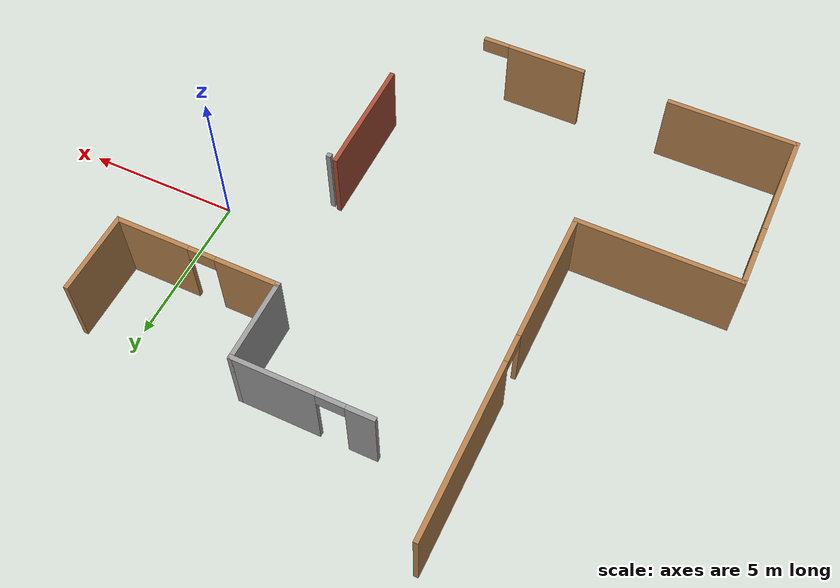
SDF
<sdf version="1.7">
 <model name="floorplan">
  <link name="Wall_1">
   <pose>-2.93248 -1.67538 0 0 -0 0</pose>
   <visual name="Wall_1_Visual">
    <pose>0 0 1.25 0 -0 0</pose>
    <geometry><box><size>0.16 0.15 2.5</size></box></geometry>
    <material>
     <script><uri>file://media/materials/scripts/gazebo.material</uri><name>Gazebo/Grey</name></script>
     <ambient>0 0 0 1</ambient>
     <shader type="pixel"/>
    </material>
    <meta><layer>0</layer></meta>
   </visual>
   <collision name="Wall_1_Collision">
    <pose>0 0 1.25 0 -0 0</pose>
    <geometry><box><size>0.16 0.15 2.5</size></box></geometry>
    <surface>
     <friction>
      <ode><mu>1</mu><mu2>1</mu2><fdir1>0 0 0</fdir1><slip1>0</slip1><slip2>0</slip2></ode>
      <torsional>
       <coefficient>1</coefficient>
       <patch_radius>0</patch_radius>
       <surface_radius>0</surface_radius>
       <use_patch_radius>1</use_patch_radius>
       <ode><slip>0</slip></ode>
      </torsional>
     </friction>
     <bounce><restitution_coefficient>0</restitution_coefficient><threshold>1e+06</threshold></bounce>
     <contact>
      <collide_without_contact>0</collide_without_contact>
      <collide_without_contact_bitmask>1</collide_without_contact_bitmask>
      <collide_bitmask>1</collide_bitmask>
      <ode>
       <soft_cfm>0</soft_cfm>
       <soft_erp>0.2</soft_erp>
       <kp>1e+13</kp>
       <kd>1</kd>
       <max_vel>0.01</max_vel>
       <min_depth>0</min_depth>
      </ode>
      <bullet>
       <split_impulse>1</split_impulse>
       <split_impulse_penetration_threshold>-0.01</split_impulse_penetration_threshold>
       <soft_cfm>0</soft_cfm>
       <soft_erp>0.2</soft_erp>
       <kp>1e+13</kp>
       <kd>1</kd>
      </bullet>
     </contact>
    </surface>
   </collision>
  </link>
  <link name="Wall_22">
   <pose>-10.625 2.81893 0 0 0 -1.5708</pose>
   <visual name="Wall_22_Visual_0">
    <pose>-2.65849 0 1.25 0 -0 0</pose>
    <geometry><box><size>5.68303 0.15 2.5</size></box></geometry>
    <material>
     <script><uri>file://media/materials/scripts/gazebo.material</uri><name>Gazebo/Wood</name></script>
     <ambient>0.996078 0.47451 0.0196078 1</ambient>
     <shader type="pixel"/>
    </material>
    <meta><layer>0</layer></meta>
   </visual>
   <visual name="Wall_22_Visual_1">
    <pose>3.29151 0 1.25 0 -0 0</pose>
    <geometry><box><size>4.41697 0.15 2.5</size></box></geometry>
    <material>
     <script><uri>file://media/materials/scripts/gazebo.material</uri><name>Gazebo/Wood</name></script>
     <ambient>0.996078 0.47451 0.0196078 1</ambient>
     <shader type="pixel"/>
    </material>
    <meta><layer>0</layer></meta>
   </visual>
   <visual name="Wall_22_Visual_2">
    <pose>0.633029 0 2.25 0 -0 0</pose>
    <geometry><box><size>0.9 0.15 0.5</size></box></geometry>
    <material>
     <script><uri>file://media/materials/scripts/gazebo.material</uri><name>Gazebo/Wood</name></script>
     <ambient>0.996078 0.47451 0.0196078 1</ambient>
     <shader type="pixel"/>
    </material>
    <meta><layer>0</layer></meta>
   </visual>
   <collision name="Wall_22_Collision_0">
    <pose>-2.65849 0 1.25 0 -0 0</pose>
    <geometry><box><size>5.68303 0.15 2.5</size></box></geometry>
    <surface>
     <friction>
      <ode><mu>1</mu><mu2>1</mu2><fdir1>0 0 0</fdir1><slip1>0</slip1><slip2>0</slip2></ode>
      <torsional>
       <coefficient>1</coefficient>
       <patch_radius>0</patch_radius>
       <surface_radius>0</surface_radius>
       <use_patch_radius>1</use_patch_radius>
       <ode><slip>0</slip></ode>
      </torsional>
     </friction>
     <bounce><restitution_coefficient>0</restitution_coefficient><threshold>1e+06</threshold></bounce>
     <contact>
      <collide_without_contact>0</collide_without_contact>
      <collide_without_contact_bitmask>1</collide_without_contact_bitmask>
      <collide_bitmask>1</collide_bitmask>
      <ode>
       <soft_cfm>0</soft_cfm>
       <soft_erp>0.2</soft_erp>
       <kp>1e+13</kp>
       <kd>1</kd>
       <max_vel>0.01</max_vel>
       <min_depth>0</min_depth>
      </ode>
      <bullet>
       <split_impulse>1</split_impulse>
       <split_impulse_penetration_threshold>-0.01</split_impulse_penetration_threshold>
       <soft_cfm>0</soft_cfm>
       <soft_erp>0.2</soft_erp>
       <kp>1e+13</kp>
       <kd>1</kd>
      </bullet>
     </contact>
    </surface>
   </collision>
   <collision name="Wall_22_Collision_1">
    <pose>3.29151 0 1.25 0 -0 0</pose>
    <geometry><box><size>4.41697 0.15 2.5</size></box></geometry>
    <surface>
     <friction>
      <ode><mu>1</mu><mu2>1</mu2><fdir1>0 0 0</fdir1><slip1>0</slip1><slip2>0</slip2></ode>
      <torsional>
       <coefficient>1</coefficient>
       <patch_radius>0</patch_radius>
       <surface_radius>0</surface_radius>
       <use_patch_radius>1</use_patch_radius>
       <ode><slip>0</slip></ode>
      </torsional>
     </friction>
     <bounce><restitution_coefficient>0</restitution_coefficient><threshold>1e+06</threshold></bounce>
     <contact>
      <collide_without_contact>0</collide_without_contact>
      <collide_without_contact_bitmask>1</collide_without_contact_bitmask>
      <collide_bitmask>1</collide_bitmask>
      <ode>
       <soft_cfm>0</soft_cfm>
       <soft_erp>0.2</soft_erp>
       <kp>1e+13</kp>
       <kd>1</kd>
       <max_vel>0.01</max_vel>
       <min_depth>0</min_depth>
      </ode>
      <bullet>
       <split_impulse>1</split_impulse>
       <split_impulse_penetration_threshold>-0.01</split_impulse_penetration_threshold>
       <soft_cfm>0</soft_cfm>
       <soft_erp>0.2</soft_erp>
       <kp>1e+13</kp>
       <kd>1</kd>
      </bullet>
     </contact>
    </surface>
   </collision>
   <collision name="Wall_22_Collision_2">
    <pose>0.633029 0 2.25 0 -0 0</pose>
    <geometry><box><size>0.9 0.15 0.5</size></box></geometry>
    <surface>
     <friction>
      <ode><mu>1</mu><mu2>1</mu2><fdir1>0 0 0</fdir1><slip1>0</slip1><slip2>0</slip2></ode>
      <torsional>
       <coefficient>1</coefficient>
       <patch_radius>0</patch_radius>
       <surface_radius>0</surface_radius>
       <use_patch_radius>1</use_patch_radius>
       <ode><slip>0</slip></ode>
      </torsional>
     </friction>
     <bounce><restitution_coefficient>0</restitution_coefficient><threshold>1e+06</threshold></bounce>
     <contact>
      <collide_without_contact>0</collide_without_contact>
      <collide_without_contact_bitmask>1</collide_without_contact_bitmask>
      <collide_bitmask>1</collide_bitmask>
      <ode>
       <soft_cfm>0</soft_cfm>
       <soft_erp>0.2</soft_erp>
       <kp>1e+13</kp>
       <kd>1</kd>
       <max_vel>0.01</max_vel>
       <min_depth>0</min_depth>
      </ode>
      <bullet>
       <split_impulse>1</split_impulse>
       <split_impulse_penetration_threshold>-0.01</split_impulse_penetration_threshold>
       <soft_cfm>0</soft_cfm>
       <soft_erp>0.2</soft_erp>
       <kp>1e+13</kp>
       <kd>1</kd>
      </bullet>
     </contact>
    </surface>
   </collision>
  </link>
  <link name="Wall_23">
   <pose>-13.175 -2.60607 0 0 -0 3.14159</pose>
   <visual name="Wall_23_Visual">
    <pose>0 0 1.25 0 -0 0</pose>
    <geometry><box><size>5.25 0.15 2.5</size></box></geometry>
    <material>
     <script><uri>file://media/materials/scripts/gazebo.material</uri><name>Gazebo/Wood</name></script>
     <ambient>0.996078 0.47451 0.0196078 1</ambient>
     <shader type="pixel"/>
    </material>
    <meta><layer>0</layer></meta>
   </visual>
   <collision name="Wall_23_Collision">
    <pose>0 0 1.25 0 -0 0</pose>
    <geometry><box><size>5.25 0.15 2.5</size></box></geometry>
    <surface>
     <friction>
      <ode><mu>1</mu><mu2>1</mu2><fdir1>0 0 0</fdir1><slip1>0</slip1><slip2>0</slip2></ode>
      <torsional>
       <coefficient>1</coefficient>
       <patch_radius>0</patch_radius>
       <surface_radius>0</surface_radius>
       <use_patch_radius>1</use_patch_radius>
       <ode><slip>0</slip></ode>
      </torsional>
     </friction>
     <bounce><restitution_coefficient>0</restitution_coefficient><threshold>1e+06</threshold></bounce>
     <contact>
      <collide_without_contact>0</collide_without_contact>
      <collide_without_contact_bitmask>1</collide_without_contact_bitmask>
      <collide_bitmask>1</collide_bitmask>
      <ode>
       <soft_cfm>0</soft_cfm>
       <soft_erp>0.2</soft_erp>
       <kp>1e+13</kp>
       <kd>1</kd>
       <max_vel>0.01</max_vel>
       <min_depth>0</min_depth>
      </ode>
      <bullet>
       <split_impulse>1</split_impulse>
       <split_impulse_penetration_threshold>-0.01</split_impulse_penetration_threshold>
       <soft_cfm>0</soft_cfm>
       <soft_erp>0.2</soft_erp>
       <kp>1e+13</kp>
       <kd>1</kd>
      </bullet>
     </contact>
    </surface>
   </collision>
  </link>
  <link name="Wall_24">
   <pose>-15.725 -5.40607 0 0 0 -1.5708</pose>
   <visual name="Wall_24_Visual_1">
    <pose>1.07666 0 1.25 0 -0 0</pose>
    <geometry><box><size>3.59667 0.15 2.5</size></box></geometry>
    <material>
     <script><uri>file://media/materials/scripts/gazebo.material</uri><name>Gazebo/Wood</name></script>
     <ambient>0.996078 0.47451 0.0196078 1</ambient>
     <shader type="pixel"/>
    </material>
    <meta><layer>0</layer></meta>
   </visual>
   <visual name="Wall_24_Visual_0">
    <pose>-2.24833 0 1.25 0 -0 0</pose>
    <geometry><box><size>1.25333 0.15 2.5</size></box></geometry>
    <material>
     <script><uri>file://media/materials/scripts/gazebo.material</uri><name>Gazebo/Wood</name></script>
     <ambient>0.996078 0.47451 0.0196078 1</ambient>
     <shader type="pixel"/>
    </material>
    <meta><layer>0</layer></meta>
   </visual>
   <visual name="Wall_24_Visual_2">
    <pose>-1.17167 0 2.25 0 -0 0</pose>
    <geometry><box><size>0.9 0.15 0.5</size></box></geometry>
    <material>
     <script><uri>file://media/materials/scripts/gazebo.material</uri><name>Gazebo/Wood</name></script>
     <ambient>0.996078 0.47451 0.0196078 1</ambient>
     <shader type="pixel"/>
    </material>
    <meta><layer>0</layer></meta>
   </visual>
   <collision name="Wall_24_Collision_0">
    <pose>-2.24833 0 1.25 0 -0 0</pose>
    <geometry><box><size>1.25333 0.15 2.5</size></box></geometry>
    <surface>
     <friction>
      <ode><mu>1</mu><mu2>1</mu2><fdir1>0 0 0</fdir1><slip1>0</slip1><slip2>0</slip2></ode>
      <torsional>
       <coefficient>1</coefficient>
       <patch_radius>0</patch_radius>
       <surface_radius>0</surface_radius>
       <use_patch_radius>1</use_patch_radius>
       <ode><slip>0</slip></ode>
      </torsional>
     </friction>
     <bounce><restitution_coefficient>0</restitution_coefficient><threshold>1e+06</threshold></bounce>
     <contact>
      <collide_without_contact>0</collide_without_contact>
      <collide_without_contact_bitmask>1</collide_without_contact_bitmask>
      <collide_bitmask>1</collide_bitmask>
      <ode>
       <soft_cfm>0</soft_cfm>
       <soft_erp>0.2</soft_erp>
       <kp>1e+13</kp>
       <kd>1</kd>
       <max_vel>0.01</max_vel>
       <min_depth>0</min_depth>
      </ode>
      <bullet>
       <split_impulse>1</split_impulse>
       <split_impulse_penetration_threshold>-0.01</split_impulse_penetration_threshold>
       <soft_cfm>0</soft_cfm>
       <soft_erp>0.2</soft_erp>
       <kp>1e+13</kp>
       <kd>1</kd>
      </bullet>
     </contact>
    </surface>
   </collision>
   <collision name="Wall_24_Collision_1">
    <pose>1.07666 0 1.25 0 -0 0</pose>
    <geometry><box><size>3.59667 0.15 2.5</size></box></geometry>
    <surface>
     <friction>
      <ode><mu>1</mu><mu2>1</mu2><fdir1>0 0 0</fdir1><slip1>0</slip1><slip2>0</slip2></ode>
      <torsional>
       <coefficient>1</coefficient>
       <patch_radius>0</patch_radius>
       <surface_radius>0</surface_radius>
       <use_patch_radius>1</use_patch_radius>
       <ode><slip>0</slip></ode>
      </torsional>
     </friction>
     <bounce><restitution_coefficient>0</restitution_coefficient><threshold>1e+06</threshold></bounce>
     <contact>
      <collide_without_contact>0</collide_without_contact>
      <collide_without_contact_bitmask>1</collide_without_contact_bitmask>
      <collide_bitmask>1</collide_bitmask>
      <ode>
       <soft_cfm>0</soft_cfm>
       <soft_erp>0.2</soft_erp>
       <kp>1e+13</kp>
       <kd>1</kd>
       <max_vel>0.01</max_vel>
       <min_depth>0</min_depth>
      </ode>
      <bullet>
       <split_impulse>1</split_impulse>
       <split_impulse_penetration_threshold>-0.01</split_impulse_penetration_threshold>
       <soft_cfm>0</soft_cfm>
       <soft_erp>0.2</soft_erp>
       <kp>1e+13</kp>
       <kd>1</kd>
      </bullet>
     </contact>
    </surface>
   </collision>
   <collision name="Wall_24_Collision_2">
    <pose>-1.17167 0 2.25 0 -0 0</pose>
    <geometry><box><size>0.9 0.15 0.5</size></box></geometry>
    <surface>
     <friction>
      <ode><mu>1</mu><mu2>1</mu2><fdir1>0 0 0</fdir1><slip1>0</slip1><slip2>0</slip2></ode>
      <torsional>
       <coefficient>1</coefficient>
       <patch_radius>0</patch_radius>
       <surface_radius>0</surface_radius>
       <use_patch_radius>1</use_patch_radius>
       <ode><slip>0</slip></ode>
      </torsional>
     </friction>
     <bounce><restitution_coefficient>0</restitution_coefficient><threshold>1e+06</threshold></bounce>
     <contact>
      <collide_without_contact>0</collide_without_contact>
      <collide_without_contact_bitmask>1</collide_without_contact_bitmask>
      <collide_bitmask>1</collide_bitmask>
      <ode>
       <soft_cfm>0</soft_cfm>
       <soft_erp>0.2</soft_erp>
       <kp>1e+13</kp>
       <kd>1</kd>
       <max_vel>0.01</max_vel>
       <min_depth>0</min_depth>
      </ode>
      <bullet>
       <split_impulse>1</split_impulse>
       <split_impulse_penetration_threshold>-0.01</split_impulse_penetration_threshold>
       <soft_cfm>0</soft_cfm>
       <soft_erp>0.2</soft_erp>
       <kp>1e+13</kp>
       <kd>1</kd>
      </bullet>
     </contact>
    </surface>
   </collision>
  </link>
  <link name="Wall_26">
   <pose>-13.675 -8.20607 0 0 -0 0</pose>
   <visual name="Wall_26_Visual">
    <pose>0 0 1.25 0 -0 0</pose>
    <geometry><box><size>4.25 0.15 2.5</size></box></geometry>
    <material>
     <script><uri>file://media/materials/scripts/gazebo.material</uri><name>Gazebo/Wood</name></script>
     <ambient>0.996078 0.47451 0.0196078 1</ambient>
     <shader type="pixel"/>
    </material>
    <meta><layer>0</layer></meta>
   </visual>
   <collision name="Wall_26_Collision">
    <pose>0 0 1.25 0 -0 0</pose>
    <geometry><box><size>4.25 0.15 2.5</size></box></geometry>
    <surface>
     <friction>
      <ode><mu>1</mu><mu2>1</mu2><fdir1>0 0 0</fdir1><slip1>0</slip1><slip2>0</slip2></ode>
      <torsional>
       <coefficient>1</coefficient>
       <patch_radius>0</patch_radius>
       <surface_radius>0</surface_radius>
       <use_patch_radius>1</use_patch_radius>
       <ode><slip>0</slip></ode>
      </torsional>
     </friction>
     <bounce><restitution_coefficient>0</restitution_coefficient><threshold>1e+06</threshold></bounce>
     <contact>
      <collide_without_contact>0</collide_without_contact>
      <collide_without_contact_bitmask>1</collide_without_contact_bitmask>
      <collide_bitmask>1</collide_bitmask>
      <ode>
       <soft_cfm>0</soft_cfm>
       <soft_erp>0.2</soft_erp>
       <kp>1e+13</kp>
       <kd>1</kd>
       <max_vel>0.01</max_vel>
       <min_depth>0</min_depth>
      </ode>
      <bullet>
       <split_impulse>1</split_impulse>
       <split_impulse_penetration_threshold>-0.01</split_impulse_penetration_threshold>
       <soft_cfm>0</soft_cfm>
       <soft_erp>0.2</soft_erp>
       <kp>1e+13</kp>
       <kd>1</kd>
      </bullet>
     </contact>
    </surface>
   </collision>
  </link>
  <link name="Wall_32">
   <pose>-5.98815 5.71707 0 0 -0 0</pose>
   <visual name="Wall_32_Visual_0">
    <pose>-1.79547 0 1.25 0 -0 0</pose>
    <geometry><box><size>0.90906 0.15 2.5</size></box></geometry>
    <material>
     <script><uri>file://media/materials/scripts/gazebo.material</uri><name>Gazebo/Grey</name></script>
     <ambient>1 1 1 1</ambient>
     <shader type="pixel"/>
    </material>
    <meta><layer>0</layer></meta>
   </visual>
   <visual name="Wall_32_Visual_1">
    <pose>0.90453 0 1.25 0 -0 0</pose>
    <geometry><box><size>2.69094 0.15 2.5</size></box></geometry>
    <material>
     <script><uri>file://media/materials/scripts/gazebo.material</uri><name>Gazebo/Grey</name></script>
     <ambient>1 1 1 1</ambient>
     <shader type="pixel"/>
    </material>
    <meta><layer>0</layer></meta>
   </visual>
   <visual name="Wall_32_Visual_2">
    <pose>-0.89094 0 2.25 0 -0 0</pose>
    <geometry><box><size>0.9 0.15 0.5</size></box></geometry>
    <material>
     <script><uri>file://media/materials/scripts/gazebo.material</uri><name>Gazebo/Grey</name></script>
     <ambient>1 1 1 1</ambient>
     <shader type="pixel"/>
    </material>
    <meta><layer>0</layer></meta>
   </visual>
   <collision name="Wall_32_Collision_0">
    <pose>-1.79547 0 1.25 0 -0 0</pose>
    <geometry><box><size>0.90906 0.15 2.5</size></box></geometry>
    <surface>
     <friction>
      <ode><mu>1</mu><mu2>1</mu2><fdir1>0 0 0</fdir1><slip1>0</slip1><slip2>0</slip2></ode>
      <torsional>
       <coefficient>1</coefficient>
       <patch_radius>0</patch_radius>
       <surface_radius>0</surface_radius>
       <use_patch_radius>1</use_patch_radius>
       <ode><slip>0</slip></ode>
      </torsional>
     </friction>
     <bounce><restitution_coefficient>0</restitution_coefficient><threshold>1e+06</threshold></bounce>
     <contact>
      <collide_without_contact>0</collide_without_contact>
      <collide_without_contact_bitmask>1</collide_without_contact_bitmask>
      <collide_bitmask>1</collide_bitmask>
      <ode>
       <soft_cfm>0</soft_cfm>
       <soft_erp>0.2</soft_erp>
       <kp>1e+13</kp>
       <kd>1</kd>
       <max_vel>0.01</max_vel>
       <min_depth>0</min_depth>
      </ode>
      <bullet>
       <split_impulse>1</split_impulse>
       <split_impulse_penetration_threshold>-0.01</split_impulse_penetration_threshold>
       <soft_cfm>0</soft_cfm>
       <soft_erp>0.2</soft_erp>
       <kp>1e+13</kp>
       <kd>1</kd>
      </bullet>
     </contact>
    </surface>
   </collision>
   <collision name="Wall_32_Collision_1">
    <pose>0.90453 0 1.25 0 -0 0</pose>
    <geometry><box><size>2.69094 0.15 2.5</size></box></geometry>
    <surface>
     <friction>
      <ode><mu>1</mu><mu2>1</mu2><fdir1>0 0 0</fdir1><slip1>0</slip1><slip2>0</slip2></ode>
      <torsional>
       <coefficient>1</coefficient>
       <patch_radius>0</patch_radius>
       <surface_radius>0</surface_radius>
       <use_patch_radius>1</use_patch_radius>
       <ode><slip>0</slip></ode>
      </torsional>
     </friction>
     <bounce><restitution_coefficient>0</restitution_coefficient><threshold>1e+06</threshold></bounce>
     <contact>
      <collide_without_contact>0</collide_without_contact>
      <collide_without_contact_bitmask>1</collide_without_contact_bitmask>
      <collide_bitmask>1</collide_bitmask>
      <ode>
       <soft_cfm>0</soft_cfm>
       <soft_erp>0.2</soft_erp>
       <kp>1e+13</kp>
       <kd>1</kd>
       <max_vel>0.01</max_vel>
       <min_depth>0</min_depth>
      </ode>
      <bullet>
       <split_impulse>1</split_impulse>
       <split_impulse_penetration_threshold>-0.01</split_impulse_penetration_threshold>
       <soft_cfm>0</soft_cfm>
       <soft_erp>0.2</soft_erp>
       <kp>1e+13</kp>
       <kd>1</kd>
      </bullet>
     </contact>
    </surface>
   </collision>
   <collision name="Wall_32_Collision_2">
    <pose>-0.89094 0 2.25 0 -0 0</pose>
    <geometry><box><size>0.9 0.15 0.5</size></box></geometry>
    <surface>
     <friction>
      <ode><mu>1</mu><mu2>1</mu2><fdir1>0 0 0</fdir1><slip1>0</slip1><slip2>0</slip2></ode>
      <torsional>
       <coefficient>1</coefficient>
       <patch_radius>0</patch_radius>
       <surface_radius>0</surface_radius>
       <use_patch_radius>1</use_patch_radius>
       <ode><slip>0</slip></ode>
      </torsional>
     </friction>
     <bounce><restitution_coefficient>0</restitution_coefficient><threshold>1e+06</threshold></bounce>
     <contact>
      <collide_without_contact>0</collide_without_contact>
      <collide_without_contact_bitmask>1</collide_without_contact_bitmask>
      <collide_bitmask>1</collide_bitmask>
      <ode>
       <soft_cfm>0</soft_cfm>
       <soft_erp>0.2</soft_erp>
       <kp>1e+13</kp>
       <kd>1</kd>
       <max_vel>0.01</max_vel>
       <min_depth>0</min_depth>
      </ode>
      <bullet>
       <split_impulse>1</split_impulse>
       <split_impulse_penetration_threshold>-0.01</split_impulse_penetration_threshold>
       <soft_cfm>0</soft_cfm>
       <soft_erp>0.2</soft_erp>
       <kp>1e+13</kp>
       <kd>1</kd>
      </bullet>
     </contact>
    </surface>
   </collision>
  </link>
  <link name="Wall_33">
   <pose>-3.81315 4.41707 0 0 0 -1.5708</pose>
   <visual name="Wall_33_Visual">
    <pose>0 0 1.25 0 -0 0</pose>
    <geometry><box><size>2.75 0.15 2.5</size></box></geometry>
    <material>
     <script><uri>file://media/materials/scripts/gazebo.material</uri><name>Gazebo/Grey</name></script>
     <ambient>1 1 1 1</ambient>
     <shader type="pixel"/>
    </material>
    <meta><layer>0</layer></meta>
   </visual>
   <collision name="Wall_33_Collision">
    <pose>0 0 1.25 0 -0 0</pose>
    <geometry><box><size>2.75 0.15 2.5</size></box></geometry>
    <surface>
     <friction>
      <ode><mu>1</mu><mu2>1</mu2><fdir1>0 0 0</fdir1><slip1>0</slip1><slip2>0</slip2></ode>
      <torsional>
       <coefficient>1</coefficient>
       <patch_radius>0</patch_radius>
       <surface_radius>0</surface_radius>
       <use_patch_radius>1</use_patch_radius>
       <ode><slip>0</slip></ode>
      </torsional>
     </friction>
     <bounce><restitution_coefficient>0</restitution_coefficient><threshold>1e+06</threshold></bounce>
     <contact>
      <collide_without_contact>0</collide_without_contact>
      <collide_without_contact_bitmask>1</collide_without_contact_bitmask>
      <collide_bitmask>1</collide_bitmask>
      <ode>
       <soft_cfm>0</soft_cfm>
       <soft_erp>0.2</soft_erp>
       <kp>1e+13</kp>
       <kd>1</kd>
       <max_vel>0.01</max_vel>
       <min_depth>0</min_depth>
      </ode>
      <bullet>
       <split_impulse>1</split_impulse>
       <split_impulse_penetration_threshold>-0.01</split_impulse_penetration_threshold>
       <soft_cfm>0</soft_cfm>
       <soft_erp>0.2</soft_erp>
       <kp>1e+13</kp>
       <kd>1</kd>
      </bullet>
     </contact>
    </surface>
   </collision>
  </link>
  <link name="Wall_34">
   <pose>-1.13815 3.11707 0 0 -0 0</pose>
   <visual name="Wall_34_Visual_0">
    <pose>-1.68834 0 1.25 0 -0 0</pose>
    <geometry><box><size>2.12332 0.15 2.5</size></box></geometry>
    <material>
     <script><uri>file://media/materials/scripts/gazebo.material</uri><name>Gazebo/Wood</name></script>
     <ambient>1 1 1 1</ambient>
     <shader type="pixel"/>
    </material>
    <meta><layer>0</layer></meta>
   </visual>
   <visual name="Wall_34_Visual_1">
    <pose>1.51166 0 1.25 0 -0 0</pose>
    <geometry><box><size>2.47668 0.15 2.5</size></box></geometry>
    <material>
     <script><uri>file://media/materials/scripts/gazebo.material</uri><name>Gazebo/Wood</name></script>
     <ambient>1 1 1 1</ambient>
     <shader type="pixel"/>
    </material>
    <meta><layer>0</layer></meta>
   </visual>
   <visual name="Wall_34_Visual_2">
    <pose>-0.17668 0 2.25 0 -0 0</pose>
    <geometry><box><size>0.9 0.15 0.5</size></box></geometry>
    <material>
     <script><uri>file://media/materials/scripts/gazebo.material</uri><name>Gazebo/Wood</name></script>
     <ambient>1 1 1 1</ambient>
     <shader type="pixel"/>
    </material>
    <meta><layer>0</layer></meta>
   </visual>
   <collision name="Wall_34_Collision_0">
    <pose>-1.68834 0 1.25 0 -0 0</pose>
    <geometry><box><size>2.12332 0.15 2.5</size></box></geometry>
    <surface>
     <friction>
      <ode><mu>1</mu><mu2>1</mu2><fdir1>0 0 0</fdir1><slip1>0</slip1><slip2>0</slip2></ode>
      <torsional>
       <coefficient>1</coefficient>
       <patch_radius>0</patch_radius>
       <surface_radius>0</surface_radius>
       <use_patch_radius>1</use_patch_radius>
       <ode><slip>0</slip></ode>
      </torsional>
     </friction>
     <bounce><restitution_coefficient>0</restitution_coefficient><threshold>1e+06</threshold></bounce>
     <contact>
      <collide_without_contact>0</collide_without_contact>
      <collide_without_contact_bitmask>1</collide_without_contact_bitmask>
      <collide_bitmask>1</collide_bitmask>
      <ode>
       <soft_cfm>0</soft_cfm>
       <soft_erp>0.2</soft_erp>
       <kp>1e+13</kp>
       <kd>1</kd>
       <max_vel>0.01</max_vel>
       <min_depth>0</min_depth>
      </ode>
      <bullet>
       <split_impulse>1</split_impulse>
       <split_impulse_penetration_threshold>-0.01</split_impulse_penetration_threshold>
       <soft_cfm>0</soft_cfm>
       <soft_erp>0.2</soft_erp>
       <kp>1e+13</kp>
       <kd>1</kd>
      </bullet>
     </contact>
    </surface>
   </collision>
   <collision name="Wall_34_Collision_1">
    <pose>1.51166 0 1.25 0 -0 0</pose>
    <geometry><box><size>2.47668 0.15 2.5</size></box></geometry>
    <surface>
     <friction>
      <ode><mu>1</mu><mu2>1</mu2><fdir1>0 0 0</fdir1><slip1>0</slip1><slip2>0</slip2></ode>
      <torsional>
       <coefficient>1</coefficient>
       <patch_radius>0</patch_radius>
       <surface_radius>0</surface_radius>
       <use_patch_radius>1</use_patch_radius>
       <ode><slip>0</slip></ode>
      </torsional>
     </friction>
     <bounce><restitution_coefficient>0</restitution_coefficient><threshold>1e+06</threshold></bounce>
     <contact>
      <collide_without_contact>0</collide_without_contact>
      <collide_without_contact_bitmask>1</collide_without_contact_bitmask>
      <collide_bitmask>1</collide_bitmask>
      <ode>
       <soft_cfm>0</soft_cfm>
       <soft_erp>0.2</soft_erp>
       <kp>1e+13</kp>
       <kd>1</kd>
       <max_vel>0.01</max_vel>
       <min_depth>0</min_depth>
      </ode>
      <bullet>
       <split_impulse>1</split_impulse>
       <split_impulse_penetration_threshold>-0.01</split_impulse_penetration_threshold>
       <soft_cfm>0</soft_cfm>
       <soft_erp>0.2</soft_erp>
       <kp>1e+13</kp>
       <kd>1</kd>
      </bullet>
     </contact>
    </surface>
   </collision>
   <collision name="Wall_34_Collision_2">
    <pose>-0.17668 0 2.25 0 -0 0</pose>
    <geometry><box><size>0.9 0.15 0.5</size></box></geometry>
    <surface>
     <friction>
      <ode><mu>1</mu><mu2>1</mu2><fdir1>0 0 0</fdir1><slip1>0</slip1><slip2>0</slip2></ode>
      <torsional>
       <coefficient>1</coefficient>
       <patch_radius>0</patch_radius>
       <surface_radius>0</surface_radius>
       <use_patch_radius>1</use_patch_radius>
       <ode><slip>0</slip></ode>
      </torsional>
     </friction>
     <bounce><restitution_coefficient>0</restitution_coefficient><threshold>1e+06</threshold></bounce>
     <contact>
      <collide_without_contact>0</collide_without_contact>
      <collide_without_contact_bitmask>1</collide_without_contact_bitmask>
      <collide_bitmask>1</collide_bitmask>
      <ode>
       <soft_cfm>0</soft_cfm>
       <soft_erp>0.2</soft_erp>
       <kp>1e+13</kp>
       <kd>1</kd>
       <max_vel>0.01</max_vel>
       <min_depth>0</min_depth>
      </ode>
      <bullet>
       <split_impulse>1</split_impulse>
       <split_impulse_penetration_threshold>-0.01</split_impulse_penetration_threshold>
       <soft_cfm>0</soft_cfm>
       <soft_erp>0.2</soft_erp>
       <kp>1e+13</kp>
       <kd>1</kd>
      </bullet>
     </contact>
    </surface>
   </collision>
  </link>
  <link name="Wall_35">
   <pose>1.53685 4.41707 0 0 -0 1.5708</pose>
   <visual name="Wall_35_Visual">
    <pose>0 0 1.25 0 -0 0</pose>
    <geometry><box><size>2.75 0.15 2.5</size></box></geometry>
    <material>
     <script><uri>file://media/materials/scripts/gazebo.material</uri><name>Gazebo/Wood</name></script>
     <ambient>1 1 1 1</ambient>
     <shader type="pixel"/>
    </material>
    <meta><layer>0</layer></meta>
   </visual>
   <collision name="Wall_35_Collision">
    <pose>0 0 1.25 0 -0 0</pose>
    <geometry><box><size>2.75 0.15 2.5</size></box></geometry>
    <surface>
     <friction>
      <ode><mu>1</mu><mu2>1</mu2><fdir1>0 0 0</fdir1><slip1>0</slip1><slip2>0</slip2></ode>
      <torsional>
       <coefficient>1</coefficient>
       <patch_radius>0</patch_radius>
       <surface_radius>0</surface_radius>
       <use_patch_radius>1</use_patch_radius>
       <ode><slip>0</slip></ode>
      </torsional>
     </friction>
     <bounce><restitution_coefficient>0</restitution_coefficient><threshold>1e+06</threshold></bounce>
     <contact>
      <collide_without_contact>0</collide_without_contact>
      <collide_without_contact_bitmask>1</collide_without_contact_bitmask>
      <collide_bitmask>1</collide_bitmask>
      <ode>
       <soft_cfm>0</soft_cfm>
       <soft_erp>0.2</soft_erp>
       <kp>1e+13</kp>
       <kd>1</kd>
       <max_vel>0.01</max_vel>
       <min_depth>0</min_depth>
      </ode>
      <bullet>
       <split_impulse>1</split_impulse>
       <split_impulse_penetration_threshold>-0.01</split_impulse_penetration_threshold>
       <soft_cfm>0</soft_cfm>
       <soft_erp>0.2</soft_erp>
       <kp>1e+13</kp>
       <kd>1</kd>
      </bullet>
     </contact>
    </surface>
   </collision>
  </link>
  <link name="Wall_38">
   <pose>-3.18742 -3.53777 0 0 0 -1.5708</pose>
   <visual name="Wall_38_Visual">
    <pose>0 0 1.25 0 -0 0</pose>
    <geometry><box><size>4 0.15 2.5</size></box></geometry>
    <material>
     <script><uri>file://media/materials/scripts/gazebo.material</uri><name>Gazebo/Bricks</name></script>
     <ambient>1 1 1 1</ambient>
     <shader type="pixel"/>
    </material>
    <meta><layer>0</layer></meta>
   </visual>
   <collision name="Wall_38_Collision">
    <pose>0 0 1.25 0 -0 0</pose>
    <geometry><box><size>4 0.15 2.5</size></box></geometry>
    <surface>
     <friction>
      <ode><mu>1</mu><mu2>1</mu2><fdir1>0 0 0</fdir1><slip1>0</slip1><slip2>0</slip2></ode>
      <torsional>
       <coefficient>1</coefficient>
       <patch_radius>0</patch_radius>
       <surface_radius>0</surface_radius>
       <use_patch_radius>1</use_patch_radius>
       <ode><slip>0</slip></ode>
      </torsional>
     </friction>
     <bounce><restitution_coefficient>0</restitution_coefficient><threshold>1e+06</threshold></bounce>
     <contact>
      <collide_without_contact>0</collide_without_contact>
      <collide_without_contact_bitmask>1</collide_without_contact_bitmask>
      <collide_bitmask>1</collide_bitmask>
      <ode>
       <soft_cfm>0</soft_cfm>
       <soft_erp>0.2</soft_erp>
       <kp>1e+13</kp>
       <kd>1</kd>
       <max_vel>0.01</max_vel>
       <min_depth>0</min_depth>
      </ode>
      <bullet>
       <split_impulse>1</split_impulse>
       <split_impulse_penetration_threshold>-0.01</split_impulse_penetration_threshold>
       <soft_cfm>0</soft_cfm>
       <soft_erp>0.2</soft_erp>
       <kp>1e+13</kp>
       <kd>1</kd>
      </bullet>
     </contact>
    </surface>
   </collision>
  </link>
  <link name="Wall_6">
   <pose>-6.98517 -8.24393 0 0 -0 0</pose>
   <visual name="Wall_6_Visual_0">
    <pose>-0.43671 0 1.25 0 -0 0</pose>
    <geometry><box><size>2.62658 0.15 2.5</size></box></geometry>
    <material>
     <script><uri>file://media/materials/scripts/gazebo.material</uri><name>Gazebo/Wood</name></script>
     <ambient>0.996078 0.47451 0.0196078 1</ambient>
     <shader type="pixel"/>
    </material>
    <meta><layer>0</layer></meta>
   </visual>
   <visual name="Wall_6_Visual_1">
    <pose>1.31329 0 2.25 0 -0 0</pose>
    <geometry><box><size>0.873419 0.15 0.5</size></box></geometry>
    <material>
     <script><uri>file://media/materials/scripts/gazebo.material</uri><name>Gazebo/Wood</name></script>
     <ambient>0.996078 0.47451 0.0196078 1</ambient>
     <shader type="pixel"/>
    </material>
    <meta><layer>0</layer></meta>
   </visual>
   <collision name="Wall_6_Collision_0">
    <pose>-0.43671 0 1.25 0 -0 0</pose>
    <geometry><box><size>2.62658 0.15 2.5</size></box></geometry>
    <surface>
     <friction>
      <ode><mu>1</mu><mu2>1</mu2><fdir1>0 0 0</fdir1><slip1>0</slip1><slip2>0</slip2></ode>
      <torsional>
       <coefficient>1</coefficient>
       <patch_radius>0</patch_radius>
       <surface_radius>0</surface_radius>
       <use_patch_radius>1</use_patch_radius>
       <ode><slip>0</slip></ode>
      </torsional>
     </friction>
     <bounce><restitution_coefficient>0</restitution_coefficient><threshold>1e+06</threshold></bounce>
     <contact>
      <collide_without_contact>0</collide_without_contact>
      <collide_without_contact_bitmask>1</collide_without_contact_bitmask>
      <collide_bitmask>1</collide_bitmask>
      <ode>
       <soft_cfm>0</soft_cfm>
       <soft_erp>0.2</soft_erp>
       <kp>1e+13</kp>
       <kd>1</kd>
       <max_vel>0.01</max_vel>
       <min_depth>0</min_depth>
      </ode>
      <bullet>
       <split_impulse>1</split_impulse>
       <split_impulse_penetration_threshold>-0.01</split_impulse_penetration_threshold>
       <soft_cfm>0</soft_cfm>
       <soft_erp>0.2</soft_erp>
       <kp>1e+13</kp>
       <kd>1</kd>
      </bullet>
     </contact>
    </surface>
   </collision>
   <collision name="Wall_6_Collision_1">
    <pose>1.31329 0 2.25 0 -0 0</pose>
    <geometry><box><size>0.873419 0.15 0.5</size></box></geometry>
    <surface>
     <friction>
      <ode><mu>1</mu><mu2>1</mu2><fdir1>0 0 0</fdir1><slip1>0</slip1><slip2>0</slip2></ode>
      <torsional>
       <coefficient>1</coefficient>
       <patch_radius>0</patch_radius>
       <surface_radius>0</surface_radius>
       <use_patch_radius>1</use_patch_radius>
       <ode><slip>0</slip></ode>
      </torsional>
     </friction>
     <bounce><restitution_coefficient>0</restitution_coefficient><threshold>1e+06</threshold></bounce>
     <contact>
      <collide_without_contact>0</collide_without_contact>
      <collide_without_contact_bitmask>1</collide_without_contact_bitmask>
      <collide_bitmask>1</collide_bitmask>
      <ode>
       <soft_cfm>0</soft_cfm>
       <soft_erp>0.2</soft_erp>
       <kp>1e+13</kp>
       <kd>1</kd>
       <max_vel>0.01</max_vel>
       <min_depth>0</min_depth>
      </ode>
      <bullet>
       <split_impulse>1</split_impulse>
       <split_impulse_penetration_threshold>-0.01</split_impulse_penetration_threshold>
       <soft_cfm>0</soft_cfm>
       <soft_erp>0.2</soft_erp>
       <kp>1e+13</kp>
       <kd>1</kd>
      </bullet>
     </contact>
    </surface>
   </collision>
  </link>
  <static>1</static>
 </model>
</sdf>
